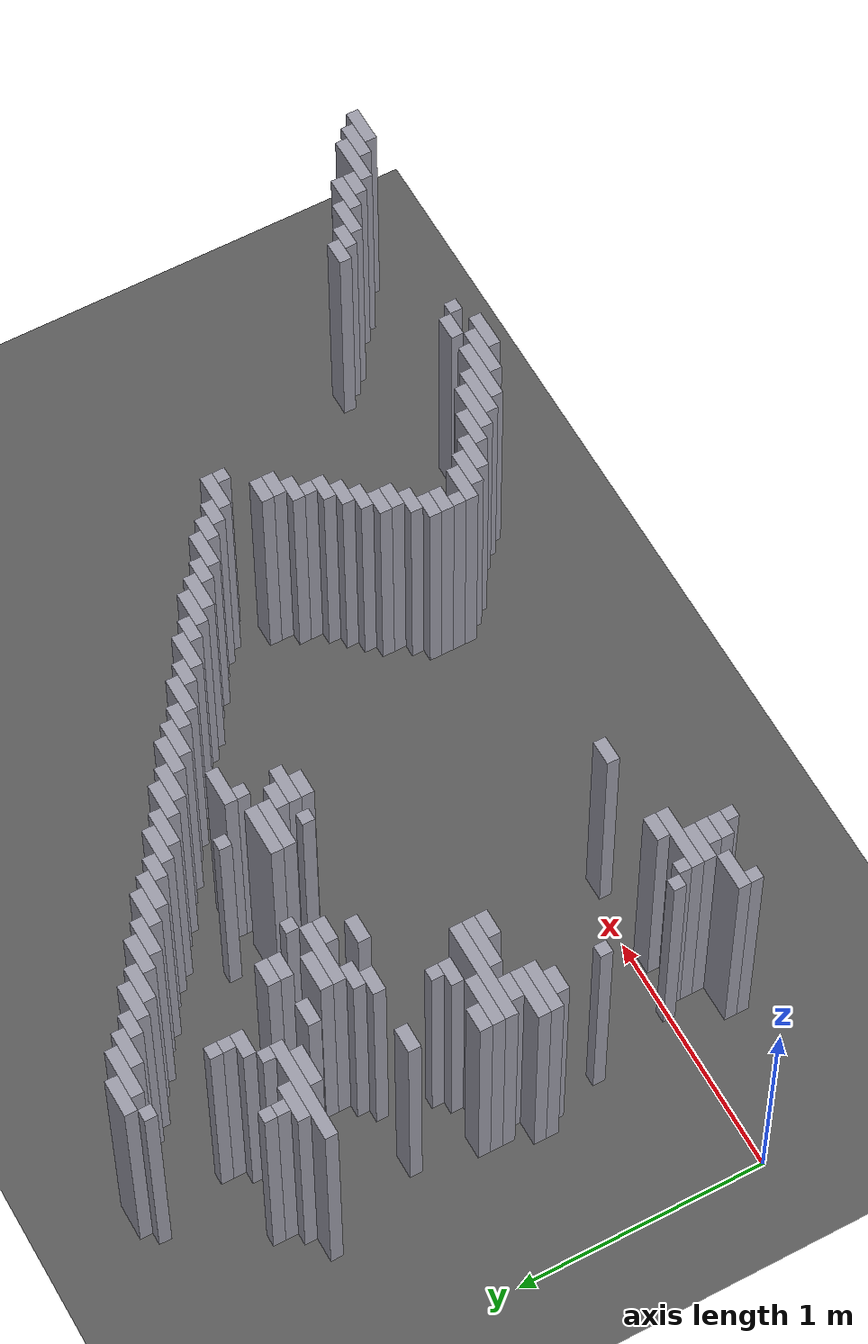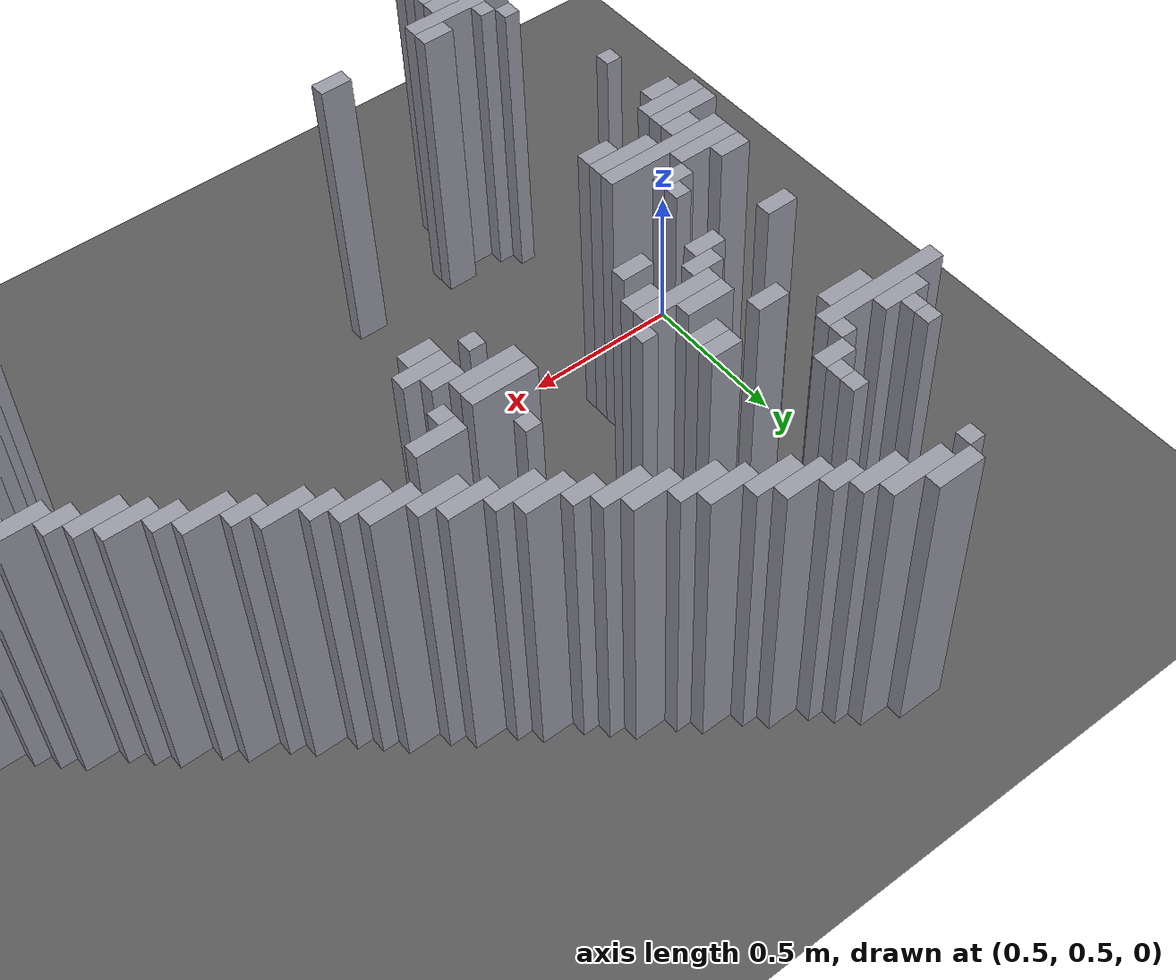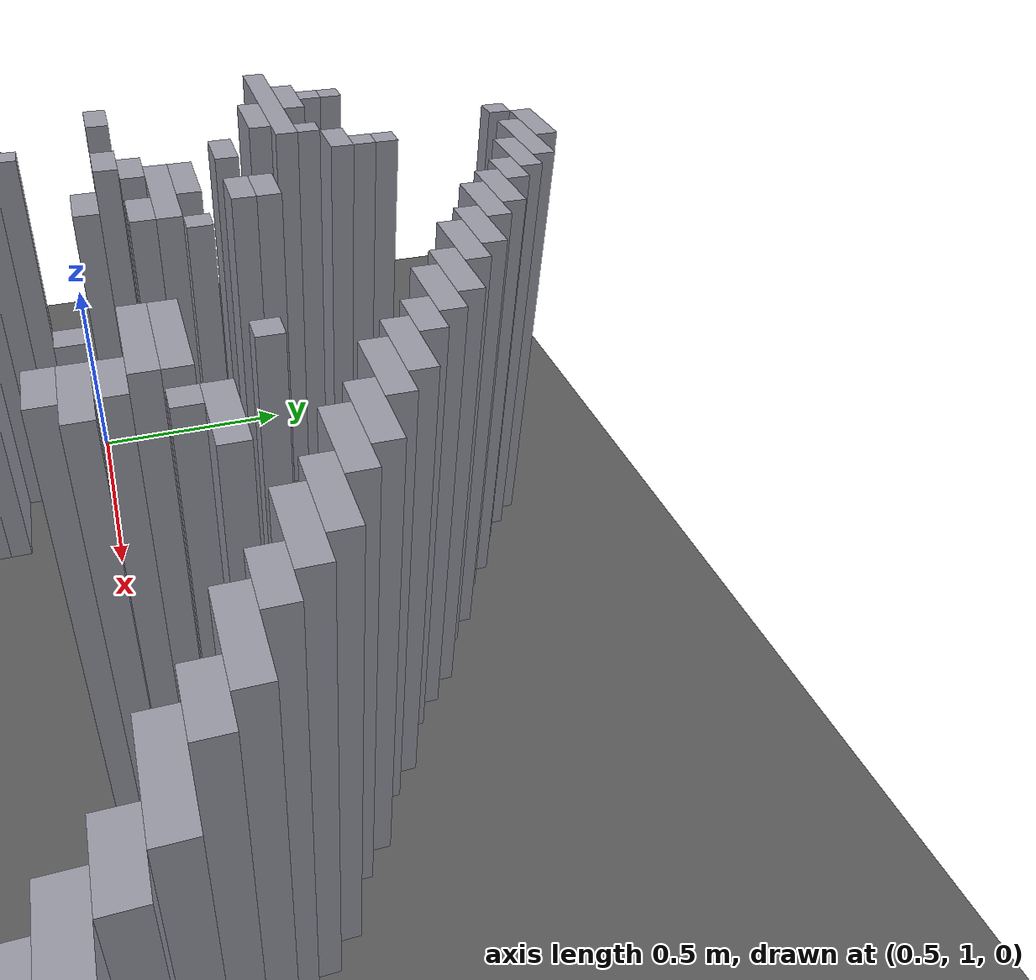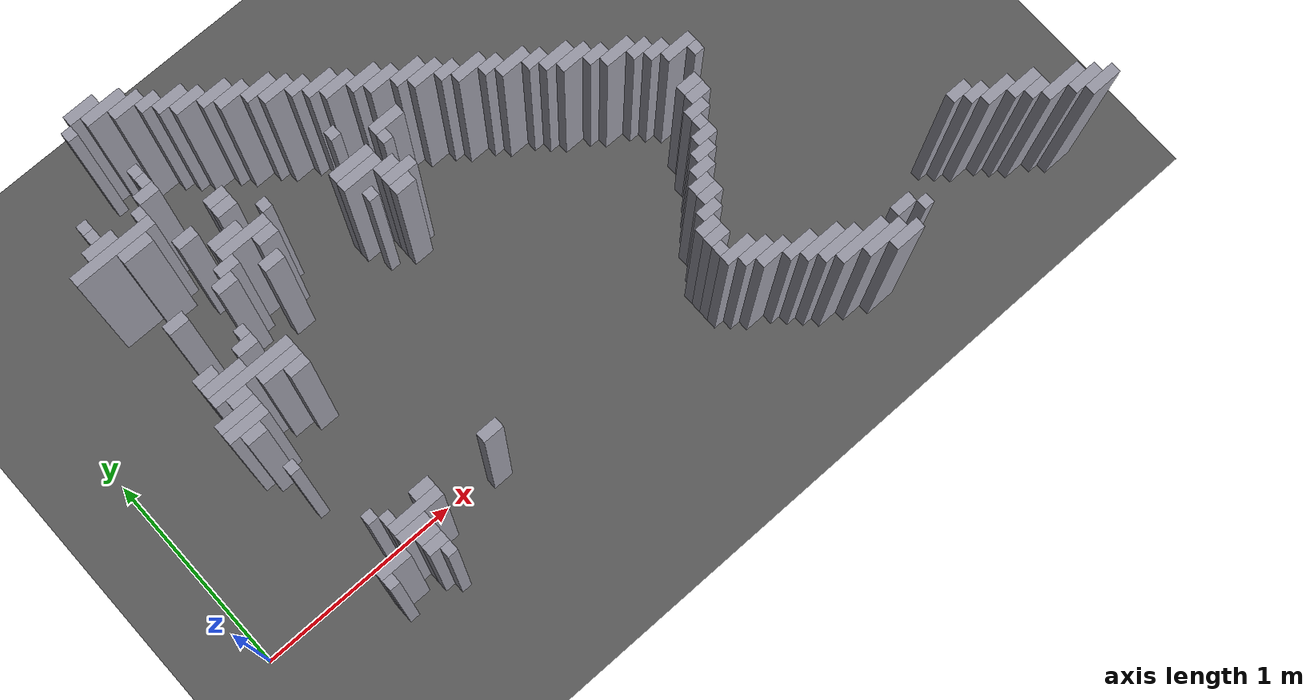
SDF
<sdf version="1.8">
 <world name="dimi">
  <model name="ground">
   <static>true</static>
   <link name="ground_link">
    <collision name="c"><geometry><plane><normal>0 0 1</normal><size>60 60</size></plane></geometry></collision>
    <visual name="v">
     <geometry><plane><normal>0 0 1</normal><size>60 60</size></plane></geometry>
     <material><ambient>0.3 0.3 0.3 1</ambient><diffuse>0.35 0.35 0.35 1</diffuse></material>
    </visual>
   </link>
  </model>
  <model name="walls">
   <static>true</static>
   <link name="wall_0">
    <pose>0.8850 2.0550 0.5000 0 0 0</pose>
    <collision name="c"><geometry><box><size>0.1500 0.0500 1.0000</size></box></geometry></collision>
    <visual name="v">
     <geometry><box><size>0.1500 0.0500 1.0000</size></box></geometry>
     <material><ambient>0.5 0.5 0.55 1</ambient><diffuse>0.6 0.6 0.65 1</diffuse></material>
    </visual>
   </link>
   <link name="wall_1">
    <pose>0.7850 2.0050 0.5000 0 0 0</pose>
    <collision name="c"><geometry><box><size>0.0500 0.0500 1.0000</size></box></geometry></collision>
    <visual name="v">
     <geometry><box><size>0.0500 0.0500 1.0000</size></box></geometry>
     <material><ambient>0.5 0.5 0.55 1</ambient><diffuse>0.6 0.6 0.65 1</diffuse></material>
    </visual>
   </link>
   <link name="wall_2">
    <pose>0.9600 2.0050 0.5000 0 0 0</pose>
    <collision name="c"><geometry><box><size>0.2000 0.0500 1.0000</size></box></geometry></collision>
    <visual name="v">
     <geometry><box><size>0.2000 0.0500 1.0000</size></box></geometry>
     <material><ambient>0.5 0.5 0.55 1</ambient><diffuse>0.6 0.6 0.65 1</diffuse></material>
    </visual>
   </link>
   <link name="wall_3">
    <pose>1.0350 1.9550 0.5000 0 0 0</pose>
    <collision name="c"><geometry><box><size>0.1500 0.0500 1.0000</size></box></geometry></collision>
    <visual name="v">
     <geometry><box><size>0.1500 0.0500 1.0000</size></box></geometry>
     <material><ambient>0.5 0.5 0.55 1</ambient><diffuse>0.6 0.6 0.65 1</diffuse></material>
    </visual>
   </link>
   <link name="wall_4">
    <pose>1.1100 1.9050 0.5000 0 0 0</pose>
    <collision name="c"><geometry><box><size>0.1000 0.0500 1.0000</size></box></geometry></collision>
    <visual name="v">
     <geometry><box><size>0.1000 0.0500 1.0000</size></box></geometry>
     <material><ambient>0.5 0.5 0.55 1</ambient><diffuse>0.6 0.6 0.65 1</diffuse></material>
    </visual>
   </link>
   <link name="wall_5">
    <pose>1.1850 1.8550 0.5000 0 0 0</pose>
    <collision name="c"><geometry><box><size>0.1500 0.0500 1.0000</size></box></geometry></collision>
    <visual name="v">
     <geometry><box><size>0.1500 0.0500 1.0000</size></box></geometry>
     <material><ambient>0.5 0.5 0.55 1</ambient><diffuse>0.6 0.6 0.65 1</diffuse></material>
    </visual>
   </link>
   <link name="wall_6">
    <pose>1.2350 1.8050 0.5000 0 0 0</pose>
    <collision name="c"><geometry><box><size>0.1500 0.0500 1.0000</size></box></geometry></collision>
    <visual name="v">
     <geometry><box><size>0.1500 0.0500 1.0000</size></box></geometry>
     <material><ambient>0.5 0.5 0.55 1</ambient><diffuse>0.6 0.6 0.65 1</diffuse></material>
    </visual>
   </link>
   <link name="wall_8">
    <pose>1.3350 1.7550 0.5000 0 0 0</pose>
    <collision name="c"><geometry><box><size>0.1500 0.0500 1.0000</size></box></geometry></collision>
    <visual name="v">
     <geometry><box><size>0.1500 0.0500 1.0000</size></box></geometry>
     <material><ambient>0.5 0.5 0.55 1</ambient><diffuse>0.6 0.6 0.65 1</diffuse></material>
    </visual>
   </link>
   <link name="wall_11">
    <pose>0.8850 1.7050 0.5000 0 0 0</pose>
    <collision name="c"><geometry><box><size>0.0500 0.0500 1.0000</size></box></geometry></collision>
    <visual name="v">
     <geometry><box><size>0.0500 0.0500 1.0000</size></box></geometry>
     <material><ambient>0.5 0.5 0.55 1</ambient><diffuse>0.6 0.6 0.65 1</diffuse></material>
    </visual>
   </link>
   <link name="wall_12">
    <pose>1.3850 1.7050 0.5000 0 0 0</pose>
    <collision name="c"><geometry><box><size>0.1500 0.0500 1.0000</size></box></geometry></collision>
    <visual name="v">
     <geometry><box><size>0.1500 0.0500 1.0000</size></box></geometry>
     <material><ambient>0.5 0.5 0.55 1</ambient><diffuse>0.6 0.6 0.65 1</diffuse></material>
    </visual>
   </link>
   <link name="wall_14">
    <pose>0.5850 1.6550 0.5000 0 0 0</pose>
    <collision name="c"><geometry><box><size>0.0500 0.0500 1.0000</size></box></geometry></collision>
    <visual name="v">
     <geometry><box><size>0.0500 0.0500 1.0000</size></box></geometry>
     <material><ambient>0.5 0.5 0.55 1</ambient><diffuse>0.6 0.6 0.65 1</diffuse></material>
    </visual>
   </link>
   <link name="wall_15">
    <pose>0.8850 1.6550 0.5000 0 0 0</pose>
    <collision name="c"><geometry><box><size>0.0500 0.0500 1.0000</size></box></geometry></collision>
    <visual name="v">
     <geometry><box><size>0.0500 0.0500 1.0000</size></box></geometry>
     <material><ambient>0.5 0.5 0.55 1</ambient><diffuse>0.6 0.6 0.65 1</diffuse></material>
    </visual>
   </link>
   <link name="wall_16">
    <pose>1.4850 1.6550 0.5000 0 0 0</pose>
    <collision name="c"><geometry><box><size>0.1500 0.0500 1.0000</size></box></geometry></collision>
    <visual name="v">
     <geometry><box><size>0.1500 0.0500 1.0000</size></box></geometry>
     <material><ambient>0.5 0.5 0.55 1</ambient><diffuse>0.6 0.6 0.65 1</diffuse></material>
    </visual>
   </link>
   <link name="wall_18">
    <pose>0.5850 1.6050 0.5000 0 0 0</pose>
    <collision name="c"><geometry><box><size>0.0500 0.0500 1.0000</size></box></geometry></collision>
    <visual name="v">
     <geometry><box><size>0.0500 0.0500 1.0000</size></box></geometry>
     <material><ambient>0.5 0.5 0.55 1</ambient><diffuse>0.6 0.6 0.65 1</diffuse></material>
    </visual>
   </link>
   <link name="wall_19">
    <pose>0.8600 1.6050 0.5000 0 0 0</pose>
    <collision name="c"><geometry><box><size>0.1000 0.0500 1.0000</size></box></geometry></collision>
    <visual name="v">
     <geometry><box><size>0.1000 0.0500 1.0000</size></box></geometry>
     <material><ambient>0.5 0.5 0.55 1</ambient><diffuse>0.6 0.6 0.65 1</diffuse></material>
    </visual>
   </link>
   <link name="wall_20">
    <pose>1.5350 1.6050 0.5000 0 0 0</pose>
    <collision name="c"><geometry><box><size>0.1500 0.0500 1.0000</size></box></geometry></collision>
    <visual name="v">
     <geometry><box><size>0.1500 0.0500 1.0000</size></box></geometry>
     <material><ambient>0.5 0.5 0.55 1</ambient><diffuse>0.6 0.6 0.65 1</diffuse></material>
    </visual>
   </link>
   <link name="wall_22">
    <pose>0.5850 1.5550 0.5000 0 0 0</pose>
    <collision name="c"><geometry><box><size>0.1500 0.0500 1.0000</size></box></geometry></collision>
    <visual name="v">
     <geometry><box><size>0.1500 0.0500 1.0000</size></box></geometry>
     <material><ambient>0.5 0.5 0.55 1</ambient><diffuse>0.6 0.6 0.65 1</diffuse></material>
    </visual>
   </link>
   <link name="wall_23">
    <pose>0.7850 1.5550 0.5000 0 0 0</pose>
    <collision name="c"><geometry><box><size>0.0500 0.0500 1.0000</size></box></geometry></collision>
    <visual name="v">
     <geometry><box><size>0.0500 0.0500 1.0000</size></box></geometry>
     <material><ambient>0.5 0.5 0.55 1</ambient><diffuse>0.6 0.6 0.65 1</diffuse></material>
    </visual>
   </link>
   <link name="wall_24">
    <pose>1.6100 1.5550 0.5000 0 0 0</pose>
    <collision name="c"><geometry><box><size>0.1000 0.0500 1.0000</size></box></geometry></collision>
    <visual name="v">
     <geometry><box><size>0.1000 0.0500 1.0000</size></box></geometry>
     <material><ambient>0.5 0.5 0.55 1</ambient><diffuse>0.6 0.6 0.65 1</diffuse></material>
    </visual>
   </link>
   <link name="wall_25">
    <pose>0.6100 1.5050 0.5000 0 0 0</pose>
    <collision name="c"><geometry><box><size>0.4000 0.0500 1.0000</size></box></geometry></collision>
    <visual name="v">
     <geometry><box><size>0.4000 0.0500 1.0000</size></box></geometry>
     <material><ambient>0.5 0.5 0.55 1</ambient><diffuse>0.6 0.6 0.65 1</diffuse></material>
    </visual>
   </link>
   <link name="wall_26">
    <pose>1.6850 1.5050 0.5000 0 0 0</pose>
    <collision name="c"><geometry><box><size>0.1500 0.0500 1.0000</size></box></geometry></collision>
    <visual name="v">
     <geometry><box><size>0.1500 0.0500 1.0000</size></box></geometry>
     <material><ambient>0.5 0.5 0.55 1</ambient><diffuse>0.6 0.6 0.65 1</diffuse></material>
    </visual>
   </link>
   <link name="wall_28">
    <pose>0.6850 1.4550 0.5000 0 0 0</pose>
    <collision name="c"><geometry><box><size>0.1500 0.0500 1.0000</size></box></geometry></collision>
    <visual name="v">
     <geometry><box><size>0.1500 0.0500 1.0000</size></box></geometry>
     <material><ambient>0.5 0.5 0.55 1</ambient><diffuse>0.6 0.6 0.65 1</diffuse></material>
    </visual>
   </link>
   <link name="wall_29">
    <pose>1.7350 1.4550 0.5000 0 0 0</pose>
    <collision name="c"><geometry><box><size>0.1500 0.0500 1.0000</size></box></geometry></collision>
    <visual name="v">
     <geometry><box><size>0.1500 0.0500 1.0000</size></box></geometry>
     <material><ambient>0.5 0.5 0.55 1</ambient><diffuse>0.6 0.6 0.65 1</diffuse></material>
    </visual>
   </link>
   <link name="wall_31">
    <pose>1.0600 1.4050 0.5000 0 0 0</pose>
    <collision name="c"><geometry><box><size>0.1000 0.0500 1.0000</size></box></geometry></collision>
    <visual name="v">
     <geometry><box><size>0.1000 0.0500 1.0000</size></box></geometry>
     <material><ambient>0.5 0.5 0.55 1</ambient><diffuse>0.6 0.6 0.65 1</diffuse></material>
    </visual>
   </link>
   <link name="wall_32">
    <pose>1.8350 1.4050 0.5000 0 0 0</pose>
    <collision name="c"><geometry><box><size>0.1500 0.0500 1.0000</size></box></geometry></collision>
    <visual name="v">
     <geometry><box><size>0.1500 0.0500 1.0000</size></box></geometry>
     <material><ambient>0.5 0.5 0.55 1</ambient><diffuse>0.6 0.6 0.65 1</diffuse></material>
    </visual>
   </link>
   <link name="wall_33">
    <pose>0.8600 1.3550 0.5000 0 0 0</pose>
    <collision name="c"><geometry><box><size>0.1000 0.0500 1.0000</size></box></geometry></collision>
    <visual name="v">
     <geometry><box><size>0.1000 0.0500 1.0000</size></box></geometry>
     <material><ambient>0.5 0.5 0.55 1</ambient><diffuse>0.6 0.6 0.65 1</diffuse></material>
    </visual>
   </link>
   <link name="wall_34">
    <pose>1.0600 1.3550 0.5000 0 0 0</pose>
    <collision name="c"><geometry><box><size>0.1000 0.0500 1.0000</size></box></geometry></collision>
    <visual name="v">
     <geometry><box><size>0.1000 0.0500 1.0000</size></box></geometry>
     <material><ambient>0.5 0.5 0.55 1</ambient><diffuse>0.6 0.6 0.65 1</diffuse></material>
    </visual>
   </link>
   <link name="wall_35">
    <pose>1.8850 1.3550 0.5000 0 0 0</pose>
    <collision name="c"><geometry><box><size>0.1500 0.0500 1.0000</size></box></geometry></collision>
    <visual name="v">
     <geometry><box><size>0.1500 0.0500 1.0000</size></box></geometry>
     <material><ambient>0.5 0.5 0.55 1</ambient><diffuse>0.6 0.6 0.65 1</diffuse></material>
    </visual>
   </link>
   <link name="wall_37">
    <pose>1.5850 1.3050 0.5000 0 0 0</pose>
    <collision name="c"><geometry><box><size>0.0500 0.0500 1.0000</size></box></geometry></collision>
    <visual name="v">
     <geometry><box><size>0.0500 0.0500 1.0000</size></box></geometry>
     <material><ambient>0.5 0.5 0.55 1</ambient><diffuse>0.6 0.6 0.65 1</diffuse></material>
    </visual>
   </link>
   <link name="wall_38">
    <pose>1.9850 1.3050 0.5000 0 0 0</pose>
    <collision name="c"><geometry><box><size>0.1500 0.0500 1.0000</size></box></geometry></collision>
    <visual name="v">
     <geometry><box><size>0.1500 0.0500 1.0000</size></box></geometry>
     <material><ambient>0.5 0.5 0.55 1</ambient><diffuse>0.6 0.6 0.65 1</diffuse></material>
    </visual>
   </link>
   <link name="wall_40">
    <pose>0.9850 1.2550 0.5000 0 0 0</pose>
    <collision name="c"><geometry><box><size>0.1500 0.0500 1.0000</size></box></geometry></collision>
    <visual name="v">
     <geometry><box><size>0.1500 0.0500 1.0000</size></box></geometry>
     <material><ambient>0.5 0.5 0.55 1</ambient><diffuse>0.6 0.6 0.65 1</diffuse></material>
    </visual>
   </link>
   <link name="wall_41">
    <pose>1.1850 1.2550 0.5000 0 0 0</pose>
    <collision name="c"><geometry><box><size>0.0500 0.0500 1.0000</size></box></geometry></collision>
    <visual name="v">
     <geometry><box><size>0.0500 0.0500 1.0000</size></box></geometry>
     <material><ambient>0.5 0.5 0.55 1</ambient><diffuse>0.6 0.6 0.65 1</diffuse></material>
    </visual>
   </link>
   <link name="wall_42">
    <pose>2.0350 1.2550 0.5000 0 0 0</pose>
    <collision name="c"><geometry><box><size>0.1500 0.0500 1.0000</size></box></geometry></collision>
    <visual name="v">
     <geometry><box><size>0.1500 0.0500 1.0000</size></box></geometry>
     <material><ambient>0.5 0.5 0.55 1</ambient><diffuse>0.6 0.6 0.65 1</diffuse></material>
    </visual>
   </link>
   <link name="wall_44">
    <pose>1.0350 1.2050 0.5000 0 0 0</pose>
    <collision name="c"><geometry><box><size>0.2500 0.0500 1.0000</size></box></geometry></collision>
    <visual name="v">
     <geometry><box><size>0.2500 0.0500 1.0000</size></box></geometry>
     <material><ambient>0.5 0.5 0.55 1</ambient><diffuse>0.6 0.6 0.65 1</diffuse></material>
    </visual>
   </link>
   <link name="wall_45">
    <pose>1.7850 1.2050 0.5000 0 0 0</pose>
    <collision name="c"><geometry><box><size>0.1500 0.0500 1.0000</size></box></geometry></collision>
    <visual name="v">
     <geometry><box><size>0.1500 0.0500 1.0000</size></box></geometry>
     <material><ambient>0.5 0.5 0.55 1</ambient><diffuse>0.6 0.6 0.65 1</diffuse></material>
    </visual>
   </link>
   <link name="wall_46">
    <pose>2.1100 1.2050 0.5000 0 0 0</pose>
    <collision name="c"><geometry><box><size>0.1000 0.0500 1.0000</size></box></geometry></collision>
    <visual name="v">
     <geometry><box><size>0.1000 0.0500 1.0000</size></box></geometry>
     <material><ambient>0.5 0.5 0.55 1</ambient><diffuse>0.6 0.6 0.65 1</diffuse></material>
    </visual>
   </link>
   <link name="wall_48">
    <pose>0.9100 1.1550 0.5000 0 0 0</pose>
    <collision name="c"><geometry><box><size>0.1000 0.0500 1.0000</size></box></geometry></collision>
    <visual name="v">
     <geometry><box><size>0.1000 0.0500 1.0000</size></box></geometry>
     <material><ambient>0.5 0.5 0.55 1</ambient><diffuse>0.6 0.6 0.65 1</diffuse></material>
    </visual>
   </link>
   <link name="wall_49">
    <pose>1.1100 1.1550 0.5000 0 0 0</pose>
    <collision name="c"><geometry><box><size>0.1000 0.0500 1.0000</size></box></geometry></collision>
    <visual name="v">
     <geometry><box><size>0.1000 0.0500 1.0000</size></box></geometry>
     <material><ambient>0.5 0.5 0.55 1</ambient><diffuse>0.6 0.6 0.65 1</diffuse></material>
    </visual>
   </link>
   <link name="wall_50">
    <pose>1.5600 1.1550 0.5000 0 0 0</pose>
    <collision name="c"><geometry><box><size>0.2000 0.0500 1.0000</size></box></geometry></collision>
    <visual name="v">
     <geometry><box><size>0.2000 0.0500 1.0000</size></box></geometry>
     <material><ambient>0.5 0.5 0.55 1</ambient><diffuse>0.6 0.6 0.65 1</diffuse></material>
    </visual>
   </link>
   <link name="wall_51">
    <pose>1.7350 1.1550 0.5000 0 0 0</pose>
    <collision name="c"><geometry><box><size>0.0500 0.0500 1.0000</size></box></geometry></collision>
    <visual name="v">
     <geometry><box><size>0.0500 0.0500 1.0000</size></box></geometry>
     <material><ambient>0.5 0.5 0.55 1</ambient><diffuse>0.6 0.6 0.65 1</diffuse></material>
    </visual>
   </link>
   <link name="wall_52">
    <pose>2.1850 1.1550 0.5000 0 0 0</pose>
    <collision name="c"><geometry><box><size>0.1500 0.0500 1.0000</size></box></geometry></collision>
    <visual name="v">
     <geometry><box><size>0.1500 0.0500 1.0000</size></box></geometry>
     <material><ambient>0.5 0.5 0.55 1</ambient><diffuse>0.6 0.6 0.65 1</diffuse></material>
    </visual>
   </link>
   <link name="wall_54">
    <pose>0.6100 1.1050 0.5000 0 0 0</pose>
    <collision name="c"><geometry><box><size>0.1000 0.0500 1.0000</size></box></geometry></collision>
    <visual name="v">
     <geometry><box><size>0.1000 0.0500 1.0000</size></box></geometry>
     <material><ambient>0.5 0.5 0.55 1</ambient><diffuse>0.6 0.6 0.65 1</diffuse></material>
    </visual>
   </link>
   <link name="wall_55">
    <pose>0.8600 1.1050 0.5000 0 0 0</pose>
    <collision name="c"><geometry><box><size>0.1000 0.0500 1.0000</size></box></geometry></collision>
    <visual name="v">
     <geometry><box><size>0.1000 0.0500 1.0000</size></box></geometry>
     <material><ambient>0.5 0.5 0.55 1</ambient><diffuse>0.6 0.6 0.65 1</diffuse></material>
    </visual>
   </link>
   <link name="wall_56">
    <pose>1.5600 1.1050 0.5000 0 0 0</pose>
    <collision name="c"><geometry><box><size>0.2000 0.0500 1.0000</size></box></geometry></collision>
    <visual name="v">
     <geometry><box><size>0.2000 0.0500 1.0000</size></box></geometry>
     <material><ambient>0.5 0.5 0.55 1</ambient><diffuse>0.6 0.6 0.65 1</diffuse></material>
    </visual>
   </link>
   <link name="wall_57">
    <pose>2.2600 1.1050 0.5000 0 0 0</pose>
    <collision name="c"><geometry><box><size>0.1000 0.0500 1.0000</size></box></geometry></collision>
    <visual name="v">
     <geometry><box><size>0.1000 0.0500 1.0000</size></box></geometry>
     <material><ambient>0.5 0.5 0.55 1</ambient><diffuse>0.6 0.6 0.65 1</diffuse></material>
    </visual>
   </link>
   <link name="wall_59">
    <pose>1.0600 1.0550 0.5000 0 0 0</pose>
    <collision name="c"><geometry><box><size>0.1000 0.0500 1.0000</size></box></geometry></collision>
    <visual name="v">
     <geometry><box><size>0.1000 0.0500 1.0000</size></box></geometry>
     <material><ambient>0.5 0.5 0.55 1</ambient><diffuse>0.6 0.6 0.65 1</diffuse></material>
    </visual>
   </link>
   <link name="wall_60">
    <pose>1.6600 1.0550 0.5000 0 0 0</pose>
    <collision name="c"><geometry><box><size>0.1000 0.0500 1.0000</size></box></geometry></collision>
    <visual name="v">
     <geometry><box><size>0.1000 0.0500 1.0000</size></box></geometry>
     <material><ambient>0.5 0.5 0.55 1</ambient><diffuse>0.6 0.6 0.65 1</diffuse></material>
    </visual>
   </link>
   <link name="wall_61">
    <pose>2.3350 1.0550 0.5000 0 0 0</pose>
    <collision name="c"><geometry><box><size>0.1500 0.0500 1.0000</size></box></geometry></collision>
    <visual name="v">
     <geometry><box><size>0.1500 0.0500 1.0000</size></box></geometry>
     <material><ambient>0.5 0.5 0.55 1</ambient><diffuse>0.6 0.6 0.65 1</diffuse></material>
    </visual>
   </link>
   <link name="wall_64">
    <pose>1.5350 1.0050 0.5000 0 0 0</pose>
    <collision name="c"><geometry><box><size>0.0500 0.0500 1.0000</size></box></geometry></collision>
    <visual name="v">
     <geometry><box><size>0.0500 0.0500 1.0000</size></box></geometry>
     <material><ambient>0.5 0.5 0.55 1</ambient><diffuse>0.6 0.6 0.65 1</diffuse></material>
    </visual>
   </link>
   <link name="wall_65">
    <pose>1.6850 1.0050 0.5000 0 0 0</pose>
    <collision name="c"><geometry><box><size>0.1500 0.0500 1.0000</size></box></geometry></collision>
    <visual name="v">
     <geometry><box><size>0.1500 0.0500 1.0000</size></box></geometry>
     <material><ambient>0.5 0.5 0.55 1</ambient><diffuse>0.6 0.6 0.65 1</diffuse></material>
    </visual>
   </link>
   <link name="wall_66">
    <pose>2.4100 1.0050 0.5000 0 0 0</pose>
    <collision name="c"><geometry><box><size>0.1000 0.0500 1.0000</size></box></geometry></collision>
    <visual name="v">
     <geometry><box><size>0.1000 0.0500 1.0000</size></box></geometry>
     <material><ambient>0.5 0.5 0.55 1</ambient><diffuse>0.6 0.6 0.65 1</diffuse></material>
    </visual>
   </link>
   <link name="wall_69">
    <pose>1.6600 0.9550 0.5000 0 0 0</pose>
    <collision name="c"><geometry><box><size>0.1000 0.0500 1.0000</size></box></geometry></collision>
    <visual name="v">
     <geometry><box><size>0.1000 0.0500 1.0000</size></box></geometry>
     <material><ambient>0.5 0.5 0.55 1</ambient><diffuse>0.6 0.6 0.65 1</diffuse></material>
    </visual>
   </link>
   <link name="wall_70">
    <pose>2.4850 0.9550 0.5000 0 0 0</pose>
    <collision name="c"><geometry><box><size>0.1500 0.0500 1.0000</size></box></geometry></collision>
    <visual name="v">
     <geometry><box><size>0.1500 0.0500 1.0000</size></box></geometry>
     <material><ambient>0.5 0.5 0.55 1</ambient><diffuse>0.6 0.6 0.65 1</diffuse></material>
    </visual>
   </link>
   <link name="wall_73">
    <pose>0.7850 0.9050 0.5000 0 0 0</pose>
    <collision name="c"><geometry><box><size>0.0500 0.0500 1.0000</size></box></geometry></collision>
    <visual name="v">
     <geometry><box><size>0.0500 0.0500 1.0000</size></box></geometry>
     <material><ambient>0.5 0.5 0.55 1</ambient><diffuse>0.6 0.6 0.65 1</diffuse></material>
    </visual>
   </link>
   <link name="wall_74">
    <pose>2.5350 0.9050 0.5000 0 0 0</pose>
    <collision name="c"><geometry><box><size>0.1500 0.0500 1.0000</size></box></geometry></collision>
    <visual name="v">
     <geometry><box><size>0.1500 0.0500 1.0000</size></box></geometry>
     <material><ambient>0.5 0.5 0.55 1</ambient><diffuse>0.6 0.6 0.65 1</diffuse></material>
    </visual>
   </link>
   <link name="wall_77">
    <pose>0.5600 0.8550 0.5000 0 0 0</pose>
    <collision name="c"><geometry><box><size>0.1000 0.0500 1.0000</size></box></geometry></collision>
    <visual name="v">
     <geometry><box><size>0.1000 0.0500 1.0000</size></box></geometry>
     <material><ambient>0.5 0.5 0.55 1</ambient><diffuse>0.6 0.6 0.65 1</diffuse></material>
    </visual>
   </link>
   <link name="wall_78">
    <pose>0.7600 0.8550 0.5000 0 0 0</pose>
    <collision name="c"><geometry><box><size>0.1000 0.0500 1.0000</size></box></geometry></collision>
    <visual name="v">
     <geometry><box><size>0.1000 0.0500 1.0000</size></box></geometry>
     <material><ambient>0.5 0.5 0.55 1</ambient><diffuse>0.6 0.6 0.65 1</diffuse></material>
    </visual>
   </link>
   <link name="wall_79">
    <pose>2.6100 0.8550 0.5000 0 0 0</pose>
    <collision name="c"><geometry><box><size>0.1000 0.0500 1.0000</size></box></geometry></collision>
    <visual name="v">
     <geometry><box><size>0.1000 0.0500 1.0000</size></box></geometry>
     <material><ambient>0.5 0.5 0.55 1</ambient><diffuse>0.6 0.6 0.65 1</diffuse></material>
    </visual>
   </link>
   <link name="wall_81">
    <pose>0.6100 0.8050 0.5000 0 0 0</pose>
    <collision name="c"><geometry><box><size>0.2000 0.0500 1.0000</size></box></geometry></collision>
    <visual name="v">
     <geometry><box><size>0.2000 0.0500 1.0000</size></box></geometry>
     <material><ambient>0.5 0.5 0.55 1</ambient><diffuse>0.6 0.6 0.65 1</diffuse></material>
    </visual>
   </link>
   <link name="wall_82">
    <pose>2.6850 0.8050 0.5000 0 0 0</pose>
    <collision name="c"><geometry><box><size>0.1500 0.0500 1.0000</size></box></geometry></collision>
    <visual name="v">
     <geometry><box><size>0.1500 0.0500 1.0000</size></box></geometry>
     <material><ambient>0.5 0.5 0.55 1</ambient><diffuse>0.6 0.6 0.65 1</diffuse></material>
    </visual>
   </link>
   <link name="wall_85">
    <pose>0.7100 0.7550 0.5000 0 0 0</pose>
    <collision name="c"><geometry><box><size>0.4000 0.0500 1.0000</size></box></geometry></collision>
    <visual name="v">
     <geometry><box><size>0.4000 0.0500 1.0000</size></box></geometry>
     <material><ambient>0.5 0.5 0.55 1</ambient><diffuse>0.6 0.6 0.65 1</diffuse></material>
    </visual>
   </link>
   <link name="wall_86">
    <pose>2.7600 0.7550 0.5000 0 0 0</pose>
    <collision name="c"><geometry><box><size>0.1000 0.0500 1.0000</size></box></geometry></collision>
    <visual name="v">
     <geometry><box><size>0.1000 0.0500 1.0000</size></box></geometry>
     <material><ambient>0.5 0.5 0.55 1</ambient><diffuse>0.6 0.6 0.65 1</diffuse></material>
    </visual>
   </link>
   <link name="wall_88">
    <pose>0.6100 0.7050 0.5000 0 0 0</pose>
    <collision name="c"><geometry><box><size>0.1000 0.0500 1.0000</size></box></geometry></collision>
    <visual name="v">
     <geometry><box><size>0.1000 0.0500 1.0000</size></box></geometry>
     <material><ambient>0.5 0.5 0.55 1</ambient><diffuse>0.6 0.6 0.65 1</diffuse></material>
    </visual>
   </link>
   <link name="wall_89">
    <pose>0.8100 0.7050 0.5000 0 0 0</pose>
    <collision name="c"><geometry><box><size>0.2000 0.0500 1.0000</size></box></geometry></collision>
    <visual name="v">
     <geometry><box><size>0.2000 0.0500 1.0000</size></box></geometry>
     <material><ambient>0.5 0.5 0.55 1</ambient><diffuse>0.6 0.6 0.65 1</diffuse></material>
    </visual>
   </link>
   <link name="wall_90">
    <pose>2.8100 0.7050 0.5000 0 0 0</pose>
    <collision name="c"><geometry><box><size>0.1000 0.0500 1.0000</size></box></geometry></collision>
    <visual name="v">
     <geometry><box><size>0.1000 0.0500 1.0000</size></box></geometry>
     <material><ambient>0.5 0.5 0.55 1</ambient><diffuse>0.6 0.6 0.65 1</diffuse></material>
    </visual>
   </link>
   <link name="wall_92">
    <pose>0.5600 0.6550 0.5000 0 0 0</pose>
    <collision name="c"><geometry><box><size>0.2000 0.0500 1.0000</size></box></geometry></collision>
    <visual name="v">
     <geometry><box><size>0.2000 0.0500 1.0000</size></box></geometry>
     <material><ambient>0.5 0.5 0.55 1</ambient><diffuse>0.6 0.6 0.65 1</diffuse></material>
    </visual>
   </link>
   <link name="wall_93">
    <pose>0.8600 0.6550 0.5000 0 0 0</pose>
    <collision name="c"><geometry><box><size>0.1000 0.0500 1.0000</size></box></geometry></collision>
    <visual name="v">
     <geometry><box><size>0.1000 0.0500 1.0000</size></box></geometry>
     <material><ambient>0.5 0.5 0.55 1</ambient><diffuse>0.6 0.6 0.65 1</diffuse></material>
    </visual>
   </link>
   <link name="wall_94">
    <pose>2.8850 0.6550 0.5000 0 0 0</pose>
    <collision name="c"><geometry><box><size>0.1500 0.0500 1.0000</size></box></geometry></collision>
    <visual name="v">
     <geometry><box><size>0.1500 0.0500 1.0000</size></box></geometry>
     <material><ambient>0.5 0.5 0.55 1</ambient><diffuse>0.6 0.6 0.65 1</diffuse></material>
    </visual>
   </link>
   <link name="wall_96">
    <pose>0.5600 0.6050 0.5000 0 0 0</pose>
    <collision name="c"><geometry><box><size>0.2000 0.0500 1.0000</size></box></geometry></collision>
    <visual name="v">
     <geometry><box><size>0.2000 0.0500 1.0000</size></box></geometry>
     <material><ambient>0.5 0.5 0.55 1</ambient><diffuse>0.6 0.6 0.65 1</diffuse></material>
    </visual>
   </link>
   <link name="wall_97">
    <pose>2.9350 0.6050 0.5000 0 0 0</pose>
    <collision name="c"><geometry><box><size>0.0500 0.0500 1.0000</size></box></geometry></collision>
    <visual name="v">
     <geometry><box><size>0.0500 0.0500 1.0000</size></box></geometry>
     <material><ambient>0.5 0.5 0.55 1</ambient><diffuse>0.6 0.6 0.65 1</diffuse></material>
    </visual>
   </link>
   <link name="wall_99">
    <pose>0.5600 0.5550 0.5000 0 0 0</pose>
    <collision name="c"><geometry><box><size>0.1000 0.0500 1.0000</size></box></geometry></collision>
    <visual name="v">
     <geometry><box><size>0.1000 0.0500 1.0000</size></box></geometry>
     <material><ambient>0.5 0.5 0.55 1</ambient><diffuse>0.6 0.6 0.65 1</diffuse></material>
    </visual>
   </link>
   <link name="wall_101">
    <pose>2.8100 0.5050 0.5000 0 0 0</pose>
    <collision name="c"><geometry><box><size>0.1000 0.0500 1.0000</size></box></geometry></collision>
    <visual name="v">
     <geometry><box><size>0.1000 0.0500 1.0000</size></box></geometry>
     <material><ambient>0.5 0.5 0.55 1</ambient><diffuse>0.6 0.6 0.65 1</diffuse></material>
    </visual>
   </link>
   <link name="wall_103">
    <pose>2.8100 0.4550 0.5000 0 0 0</pose>
    <collision name="c"><geometry><box><size>0.1000 0.0500 1.0000</size></box></geometry></collision>
    <visual name="v">
     <geometry><box><size>0.1000 0.0500 1.0000</size></box></geometry>
     <material><ambient>0.5 0.5 0.55 1</ambient><diffuse>0.6 0.6 0.65 1</diffuse></material>
    </visual>
   </link>
   <link name="wall_106">
    <pose>2.7600 0.4050 0.5000 0 0 0</pose>
    <collision name="c"><geometry><box><size>0.1000 0.0500 1.0000</size></box></geometry></collision>
    <visual name="v">
     <geometry><box><size>0.1000 0.0500 1.0000</size></box></geometry>
     <material><ambient>0.5 0.5 0.55 1</ambient><diffuse>0.6 0.6 0.65 1</diffuse></material>
    </visual>
   </link>
   <link name="wall_109">
    <pose>0.5850 0.3550 0.5000 0 0 0</pose>
    <collision name="c"><geometry><box><size>0.0500 0.0500 1.0000</size></box></geometry></collision>
    <visual name="v">
     <geometry><box><size>0.0500 0.0500 1.0000</size></box></geometry>
     <material><ambient>0.5 0.5 0.55 1</ambient><diffuse>0.6 0.6 0.65 1</diffuse></material>
    </visual>
   </link>
   <link name="wall_110">
    <pose>2.7350 0.3550 0.5000 0 0 0</pose>
    <collision name="c"><geometry><box><size>0.0500 0.0500 1.0000</size></box></geometry></collision>
    <visual name="v">
     <geometry><box><size>0.0500 0.0500 1.0000</size></box></geometry>
     <material><ambient>0.5 0.5 0.55 1</ambient><diffuse>0.6 0.6 0.65 1</diffuse></material>
    </visual>
   </link>
   <link name="wall_112">
    <pose>2.7100 0.3050 0.5000 0 0 0</pose>
    <collision name="c"><geometry><box><size>0.1000 0.0500 1.0000</size></box></geometry></collision>
    <visual name="v">
     <geometry><box><size>0.1000 0.0500 1.0000</size></box></geometry>
     <material><ambient>0.5 0.5 0.55 1</ambient><diffuse>0.6 0.6 0.65 1</diffuse></material>
    </visual>
   </link>
   <link name="wall_115">
    <pose>2.6600 0.2550 0.5000 0 0 0</pose>
    <collision name="c"><geometry><box><size>0.1000 0.0500 1.0000</size></box></geometry></collision>
    <visual name="v">
     <geometry><box><size>0.1000 0.0500 1.0000</size></box></geometry>
     <material><ambient>0.5 0.5 0.55 1</ambient><diffuse>0.6 0.6 0.65 1</diffuse></material>
    </visual>
   </link>
   <link name="wall_117">
    <pose>2.6100 0.2050 0.5000 0 0 0</pose>
    <collision name="c"><geometry><box><size>0.1000 0.0500 1.0000</size></box></geometry></collision>
    <visual name="v">
     <geometry><box><size>0.1000 0.0500 1.0000</size></box></geometry>
     <material><ambient>0.5 0.5 0.55 1</ambient><diffuse>0.6 0.6 0.65 1</diffuse></material>
    </visual>
   </link>
   <link name="wall_120">
    <pose>2.5600 0.1550 0.5000 0 0 0</pose>
    <collision name="c"><geometry><box><size>0.1000 0.0500 1.0000</size></box></geometry></collision>
    <visual name="v">
     <geometry><box><size>0.1000 0.0500 1.0000</size></box></geometry>
     <material><ambient>0.5 0.5 0.55 1</ambient><diffuse>0.6 0.6 0.65 1</diffuse></material>
    </visual>
   </link>
   <link name="wall_122">
    <pose>2.5600 0.1050 0.5000 0 0 0</pose>
    <collision name="c"><geometry><box><size>0.1000 0.0500 1.0000</size></box></geometry></collision>
    <visual name="v">
     <geometry><box><size>0.1000 0.0500 1.0000</size></box></geometry>
     <material><ambient>0.5 0.5 0.55 1</ambient><diffuse>0.6 0.6 0.65 1</diffuse></material>
    </visual>
   </link>
   <link name="wall_124">
    <pose>2.5100 0.0550 0.5000 0 0 0</pose>
    <collision name="c"><geometry><box><size>0.1000 0.0500 1.0000</size></box></geometry></collision>
    <visual name="v">
     <geometry><box><size>0.1000 0.0500 1.0000</size></box></geometry>
     <material><ambient>0.5 0.5 0.55 1</ambient><diffuse>0.6 0.6 0.65 1</diffuse></material>
    </visual>
   </link>
   <link name="wall_127">
    <pose>0.6850 0.0050 0.5000 0 0 0</pose>
    <collision name="c"><geometry><box><size>0.0500 0.0500 1.0000</size></box></geometry></collision>
    <visual name="v">
     <geometry><box><size>0.0500 0.0500 1.0000</size></box></geometry>
     <material><ambient>0.5 0.5 0.55 1</ambient><diffuse>0.6 0.6 0.65 1</diffuse></material>
    </visual>
   </link>
   <link name="wall_128">
    <pose>2.4600 0.0050 0.5000 0 0 0</pose>
    <collision name="c"><geometry><box><size>0.1000 0.0500 1.0000</size></box></geometry></collision>
    <visual name="v">
     <geometry><box><size>0.1000 0.0500 1.0000</size></box></geometry>
     <material><ambient>0.5 0.5 0.55 1</ambient><diffuse>0.6 0.6 0.65 1</diffuse></material>
    </visual>
   </link>
   <link name="wall_131">
    <pose>0.7350 -0.0450 0.5000 0 0 0</pose>
    <collision name="c"><geometry><box><size>0.0500 0.0500 1.0000</size></box></geometry></collision>
    <visual name="v">
     <geometry><box><size>0.0500 0.0500 1.0000</size></box></geometry>
     <material><ambient>0.5 0.5 0.55 1</ambient><diffuse>0.6 0.6 0.65 1</diffuse></material>
    </visual>
   </link>
   <link name="wall_132">
    <pose>0.9100 -0.0450 0.5000 0 0 0</pose>
    <collision name="c"><geometry><box><size>0.1000 0.0500 1.0000</size></box></geometry></collision>
    <visual name="v">
     <geometry><box><size>0.1000 0.0500 1.0000</size></box></geometry>
     <material><ambient>0.5 0.5 0.55 1</ambient><diffuse>0.6 0.6 0.65 1</diffuse></material>
    </visual>
   </link>
   <link name="wall_133">
    <pose>1.2600 -0.0450 0.5000 0 0 0</pose>
    <collision name="c"><geometry><box><size>0.1000 0.0500 1.0000</size></box></geometry></collision>
    <visual name="v">
     <geometry><box><size>0.1000 0.0500 1.0000</size></box></geometry>
     <material><ambient>0.5 0.5 0.55 1</ambient><diffuse>0.6 0.6 0.65 1</diffuse></material>
    </visual>
   </link>
   <link name="wall_134">
    <pose>2.4600 -0.0450 0.5000 0 0 0</pose>
    <collision name="c"><geometry><box><size>0.1000 0.0500 1.0000</size></box></geometry></collision>
    <visual name="v">
     <geometry><box><size>0.1000 0.0500 1.0000</size></box></geometry>
     <material><ambient>0.5 0.5 0.55 1</ambient><diffuse>0.6 0.6 0.65 1</diffuse></material>
    </visual>
   </link>
   <link name="wall_137">
    <pose>0.8350 -0.0950 0.5000 0 0 0</pose>
    <collision name="c"><geometry><box><size>0.2500 0.0500 1.0000</size></box></geometry></collision>
    <visual name="v">
     <geometry><box><size>0.2500 0.0500 1.0000</size></box></geometry>
     <material><ambient>0.5 0.5 0.55 1</ambient><diffuse>0.6 0.6 0.65 1</diffuse></material>
    </visual>
   </link>
   <link name="wall_138">
    <pose>2.4350 -0.0950 0.5000 0 0 0</pose>
    <collision name="c"><geometry><box><size>0.0500 0.0500 1.0000</size></box></geometry></collision>
    <visual name="v">
     <geometry><box><size>0.0500 0.0500 1.0000</size></box></geometry>
     <material><ambient>0.5 0.5 0.55 1</ambient><diffuse>0.6 0.6 0.65 1</diffuse></material>
    </visual>
   </link>
   <link name="wall_141">
    <pose>0.7850 -0.1450 0.5000 0 0 0</pose>
    <collision name="c"><geometry><box><size>0.1500 0.0500 1.0000</size></box></geometry></collision>
    <visual name="v">
     <geometry><box><size>0.1500 0.0500 1.0000</size></box></geometry>
     <material><ambient>0.5 0.5 0.55 1</ambient><diffuse>0.6 0.6 0.65 1</diffuse></material>
    </visual>
   </link>
   <link name="wall_142">
    <pose>2.4850 -0.1450 0.5000 0 0 0</pose>
    <collision name="c"><geometry><box><size>0.1500 0.0500 1.0000</size></box></geometry></collision>
    <visual name="v">
     <geometry><box><size>0.1500 0.0500 1.0000</size></box></geometry>
     <material><ambient>0.5 0.5 0.55 1</ambient><diffuse>0.6 0.6 0.65 1</diffuse></material>
    </visual>
   </link>
   <link name="wall_145">
    <pose>0.6350 -0.1950 0.5000 0 0 0</pose>
    <collision name="c"><geometry><box><size>0.1500 0.0500 1.0000</size></box></geometry></collision>
    <visual name="v">
     <geometry><box><size>0.1500 0.0500 1.0000</size></box></geometry>
     <material><ambient>0.5 0.5 0.55 1</ambient><diffuse>0.6 0.6 0.65 1</diffuse></material>
    </visual>
   </link>
   <link name="wall_146">
    <pose>0.8100 -0.1950 0.5000 0 0 0</pose>
    <collision name="c"><geometry><box><size>0.1000 0.0500 1.0000</size></box></geometry></collision>
    <visual name="v">
     <geometry><box><size>0.1000 0.0500 1.0000</size></box></geometry>
     <material><ambient>0.5 0.5 0.55 1</ambient><diffuse>0.6 0.6 0.65 1</diffuse></material>
    </visual>
   </link>
   <link name="wall_147">
    <pose>2.5350 -0.1950 0.5000 0 0 0</pose>
    <collision name="c"><geometry><box><size>0.1500 0.0500 1.0000</size></box></geometry></collision>
    <visual name="v">
     <geometry><box><size>0.1500 0.0500 1.0000</size></box></geometry>
     <material><ambient>0.5 0.5 0.55 1</ambient><diffuse>0.6 0.6 0.65 1</diffuse></material>
    </visual>
   </link>
   <link name="wall_150">
    <pose>0.5850 -0.2450 0.5000 0 0 0</pose>
    <collision name="c"><geometry><box><size>0.0500 0.0500 1.0000</size></box></geometry></collision>
    <visual name="v">
     <geometry><box><size>0.0500 0.0500 1.0000</size></box></geometry>
     <material><ambient>0.5 0.5 0.55 1</ambient><diffuse>0.6 0.6 0.65 1</diffuse></material>
    </visual>
   </link>
   <link name="wall_151">
    <pose>0.8100 -0.2450 0.5000 0 0 0</pose>
    <collision name="c"><geometry><box><size>0.1000 0.0500 1.0000</size></box></geometry></collision>
    <visual name="v">
     <geometry><box><size>0.1000 0.0500 1.0000</size></box></geometry>
     <material><ambient>0.5 0.5 0.55 1</ambient><diffuse>0.6 0.6 0.65 1</diffuse></material>
    </visual>
   </link>
   <link name="wall_152">
    <pose>2.5850 -0.2450 0.5000 0 0 0</pose>
    <collision name="c"><geometry><box><size>0.1500 0.0500 1.0000</size></box></geometry></collision>
    <visual name="v">
     <geometry><box><size>0.1500 0.0500 1.0000</size></box></geometry>
     <material><ambient>0.5 0.5 0.55 1</ambient><diffuse>0.6 0.6 0.65 1</diffuse></material>
    </visual>
   </link>
   <link name="wall_153">
    <pose>3.6100 -0.2450 0.5000 0 0 0</pose>
    <collision name="c"><geometry><box><size>0.1000 0.0500 1.0000</size></box></geometry></collision>
    <visual name="v">
     <geometry><box><size>0.1000 0.0500 1.0000</size></box></geometry>
     <material><ambient>0.5 0.5 0.55 1</ambient><diffuse>0.6 0.6 0.65 1</diffuse></material>
    </visual>
   </link>
   <link name="wall_156">
    <pose>0.8350 -0.2950 0.5000 0 0 0</pose>
    <collision name="c"><geometry><box><size>0.0500 0.0500 1.0000</size></box></geometry></collision>
    <visual name="v">
     <geometry><box><size>0.0500 0.0500 1.0000</size></box></geometry>
     <material><ambient>0.5 0.5 0.55 1</ambient><diffuse>0.6 0.6 0.65 1</diffuse></material>
    </visual>
   </link>
   <link name="wall_157">
    <pose>2.6850 -0.2950 0.5000 0 0 0</pose>
    <collision name="c"><geometry><box><size>0.1500 0.0500 1.0000</size></box></geometry></collision>
    <visual name="v">
     <geometry><box><size>0.1500 0.0500 1.0000</size></box></geometry>
     <material><ambient>0.5 0.5 0.55 1</ambient><diffuse>0.6 0.6 0.65 1</diffuse></material>
    </visual>
   </link>
   <link name="wall_158">
    <pose>3.6600 -0.2950 0.5000 0 0 0</pose>
    <collision name="c"><geometry><box><size>0.1000 0.0500 1.0000</size></box></geometry></collision>
    <visual name="v">
     <geometry><box><size>0.1000 0.0500 1.0000</size></box></geometry>
     <material><ambient>0.5 0.5 0.55 1</ambient><diffuse>0.6 0.6 0.65 1</diffuse></material>
    </visual>
   </link>
   <link name="wall_161">
    <pose>2.7600 -0.3450 0.5000 0 0 0</pose>
    <collision name="c"><geometry><box><size>0.2000 0.0500 1.0000</size></box></geometry></collision>
    <visual name="v">
     <geometry><box><size>0.2000 0.0500 1.0000</size></box></geometry>
     <material><ambient>0.5 0.5 0.55 1</ambient><diffuse>0.6 0.6 0.65 1</diffuse></material>
    </visual>
   </link>
   <link name="wall_162">
    <pose>3.7350 -0.3450 0.5000 0 0 0</pose>
    <collision name="c"><geometry><box><size>0.1500 0.0500 1.0000</size></box></geometry></collision>
    <visual name="v">
     <geometry><box><size>0.1500 0.0500 1.0000</size></box></geometry>
     <material><ambient>0.5 0.5 0.55 1</ambient><diffuse>0.6 0.6 0.65 1</diffuse></material>
    </visual>
   </link>
   <link name="wall_165">
    <pose>2.8100 -0.3950 0.5000 0 0 0</pose>
    <collision name="c"><geometry><box><size>0.2000 0.0500 1.0000</size></box></geometry></collision>
    <visual name="v">
     <geometry><box><size>0.2000 0.0500 1.0000</size></box></geometry>
     <material><ambient>0.5 0.5 0.55 1</ambient><diffuse>0.6 0.6 0.65 1</diffuse></material>
    </visual>
   </link>
   <link name="wall_166">
    <pose>3.8350 -0.3950 0.5000 0 0 0</pose>
    <collision name="c"><geometry><box><size>0.1500 0.0500 1.0000</size></box></geometry></collision>
    <visual name="v">
     <geometry><box><size>0.1500 0.0500 1.0000</size></box></geometry>
     <material><ambient>0.5 0.5 0.55 1</ambient><diffuse>0.6 0.6 0.65 1</diffuse></material>
    </visual>
   </link>
   <link name="wall_168">
    <pose>2.8850 -0.4450 0.5000 0 0 0</pose>
    <collision name="c"><geometry><box><size>0.2500 0.0500 1.0000</size></box></geometry></collision>
    <visual name="v">
     <geometry><box><size>0.2500 0.0500 1.0000</size></box></geometry>
     <material><ambient>0.5 0.5 0.55 1</ambient><diffuse>0.6 0.6 0.65 1</diffuse></material>
    </visual>
   </link>
   <link name="wall_169">
    <pose>3.1100 -0.4450 0.5000 0 0 0</pose>
    <collision name="c"><geometry><box><size>0.1000 0.0500 1.0000</size></box></geometry></collision>
    <visual name="v">
     <geometry><box><size>0.1000 0.0500 1.0000</size></box></geometry>
     <material><ambient>0.5 0.5 0.55 1</ambient><diffuse>0.6 0.6 0.65 1</diffuse></material>
    </visual>
   </link>
   <link name="wall_170">
    <pose>3.8600 -0.4450 0.5000 0 0 0</pose>
    <collision name="c"><geometry><box><size>0.1000 0.0500 1.0000</size></box></geometry></collision>
    <visual name="v">
     <geometry><box><size>0.1000 0.0500 1.0000</size></box></geometry>
     <material><ambient>0.5 0.5 0.55 1</ambient><diffuse>0.6 0.6 0.65 1</diffuse></material>
    </visual>
   </link>
   <link name="wall_172">
    <pose>2.9600 -0.4950 0.5000 0 0 0</pose>
    <collision name="c"><geometry><box><size>0.2000 0.0500 1.0000</size></box></geometry></collision>
    <visual name="v">
     <geometry><box><size>0.2000 0.0500 1.0000</size></box></geometry>
     <material><ambient>0.5 0.5 0.55 1</ambient><diffuse>0.6 0.6 0.65 1</diffuse></material>
    </visual>
   </link>
   <link name="wall_173">
    <pose>3.1850 -0.4950 0.5000 0 0 0</pose>
    <collision name="c"><geometry><box><size>0.0500 0.0500 1.0000</size></box></geometry></collision>
    <visual name="v">
     <geometry><box><size>0.0500 0.0500 1.0000</size></box></geometry>
     <material><ambient>0.5 0.5 0.55 1</ambient><diffuse>0.6 0.6 0.65 1</diffuse></material>
    </visual>
   </link>
   <link name="wall_174">
    <pose>3.9600 -0.4950 0.5000 0 0 0</pose>
    <collision name="c"><geometry><box><size>0.2000 0.0500 1.0000</size></box></geometry></collision>
    <visual name="v">
     <geometry><box><size>0.2000 0.0500 1.0000</size></box></geometry>
     <material><ambient>0.5 0.5 0.55 1</ambient><diffuse>0.6 0.6 0.65 1</diffuse></material>
    </visual>
   </link>
   <link name="wall_176">
    <pose>3.0350 -0.5450 0.5000 0 0 0</pose>
    <collision name="c"><geometry><box><size>0.1500 0.0500 1.0000</size></box></geometry></collision>
    <visual name="v">
     <geometry><box><size>0.1500 0.0500 1.0000</size></box></geometry>
     <material><ambient>0.5 0.5 0.55 1</ambient><diffuse>0.6 0.6 0.65 1</diffuse></material>
    </visual>
   </link>
   <link name="wall_177">
    <pose>4.0350 -0.5450 0.5000 0 0 0</pose>
    <collision name="c"><geometry><box><size>0.1500 0.0500 1.0000</size></box></geometry></collision>
    <visual name="v">
     <geometry><box><size>0.1500 0.0500 1.0000</size></box></geometry>
     <material><ambient>0.5 0.5 0.55 1</ambient><diffuse>0.6 0.6 0.65 1</diffuse></material>
    </visual>
   </link>
   <link name="wall_181">
    <pose>4.0850 -0.5950 0.5000 0 0 0</pose>
    <collision name="c"><geometry><box><size>0.1500 0.0500 1.0000</size></box></geometry></collision>
    <visual name="v">
     <geometry><box><size>0.1500 0.0500 1.0000</size></box></geometry>
     <material><ambient>0.5 0.5 0.55 1</ambient><diffuse>0.6 0.6 0.65 1</diffuse></material>
    </visual>
   </link>
  </model>
 </world>
</sdf>
